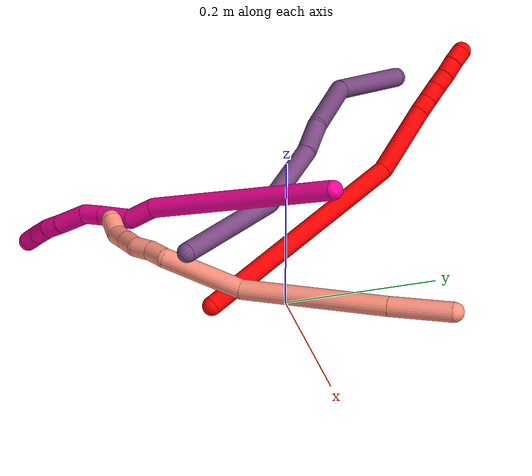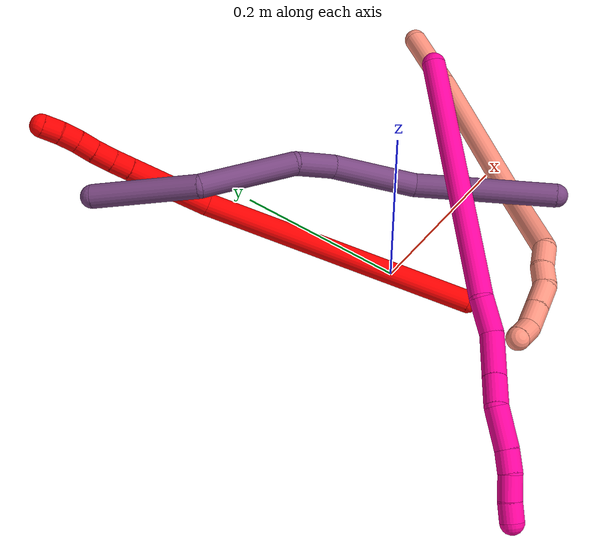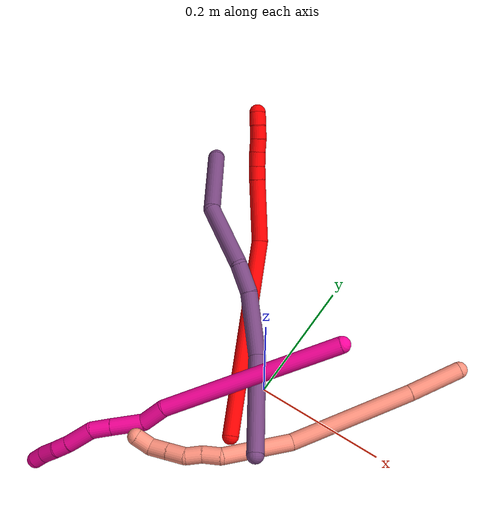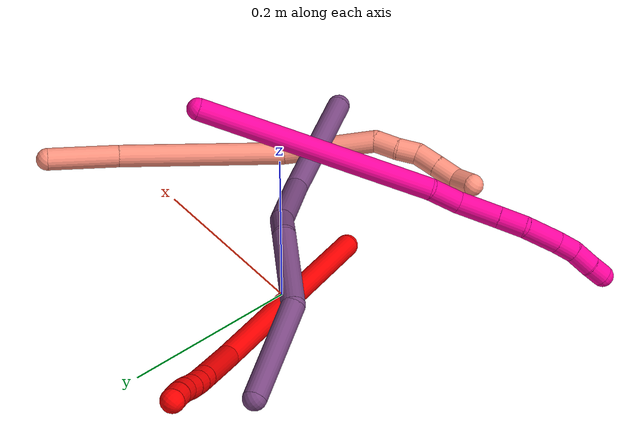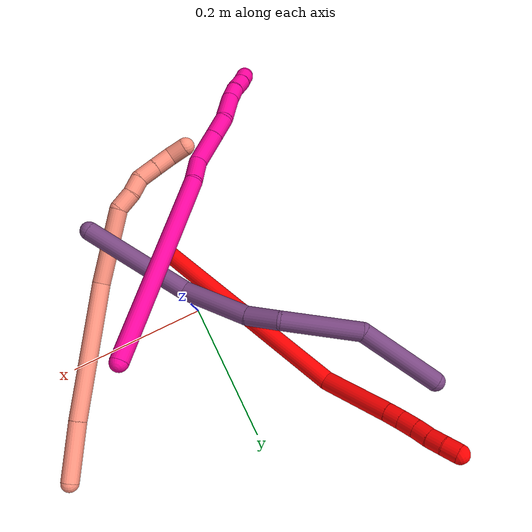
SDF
<sdf version="1.7">
 <world name="default">
  <model name="photoneo_s_sensor">
   <static>1</static>
   <pose>0 0 2 1.57079 1.57079 3.14159</pose>
   <link name="link">
    <inertial><mass>0.1</mass></inertial>
    <sensor name="sensor" type="depth">
     <update_rate>30</update_rate>
     <camera>
      <horizontal_fov>1.22</horizontal_fov>
      <image><width>1920</width><height>1200</height><format>B8G8R8</format></image>
      <clip><near>0.1</near><far>4</far></clip>
      <depth_camera><output>points</output></depth_camera>
     </camera>
     <plugin name="camera_plugin" filename="libgazebo_ros_depth_camera.so">
      <baseline>0.2</baseline>
      <alwaysOn>1</alwaysOn>
      <updateRate>0.0</updateRate>
      <cameraName>camera_ir</cameraName>
      <imageTopicName>/camera/color/image_raw</imageTopicName>
      <cameraInfoTopicName>/camera/color/camera_info</cameraInfoTopicName>
      <depthImageTopicName>/camera/depth/image_raw</depthImageTopicName>
      <depthImageCameraInfoTopicName>/camera/depth/camera_info</depthImageCameraInfoTopicName>
      <pointCloudTopicName>/camera/depth/points</pointCloudTopicName>
      <frameName>fr_optical</frameName>
      <pointCloudCutoff>0.1</pointCloudCutoff>
      <pointCloudCutoffMax>2.0</pointCloudCutoffMax>
      <distortionK1>0</distortionK1>
      <distortionK2>0</distortionK2>
      <distortionK3>0</distortionK3>
      <distortionT1>0</distortionT1>
      <distortionT2>0</distortionT2>
      <CxPrime>0</CxPrime>
      <Cx>0</Cx>
      <Cy>0</Cy>
      <focalLength>0</focalLength>
      <hackBaseline>0</hackBaseline>
     </plugin>
    </sensor>
   </link>
  </model>
  <model name="bin">
   <static>1</static>
   <link name="bottom">
    <collision name="collision-bottom">
     <pose>0 0 -0.01 0 -0 0</pose>
     <geometry><box><size>0.8 0.6 0.02</size></box></geometry>
     <surface>
      <friction><ode><mu>100</mu><mu2>100</mu2></ode></friction>
      <contact><collide_bitmask>65535</collide_bitmask></contact>
     </surface>
    </collision>
   </link>
   <link name="west_wall">
    <collision name="collision-west_wall">
     <pose>-0.41 0 0.1 0 -0 0</pose>
     <geometry><box><size>0.02 0.6 0.2</size></box></geometry>
     <surface>
      <friction><ode><mu>100</mu><mu2>100</mu2></ode></friction>
      <contact><collide_bitmask>65535</collide_bitmask></contact>
     </surface>
    </collision>
   </link>
   <link name="east_wall">
    <collision name="collision-east_wall">
     <pose>0.41 0 0.1 0 -0 0</pose>
     <geometry><box><size>0.02 0.6 0.2</size></box></geometry>
     <surface>
      <friction><ode><mu>100</mu><mu2>100</mu2></ode></friction>
      <contact><collide_bitmask>65535</collide_bitmask></contact>
     </surface>
    </collision>
   </link>
   <link name="south_wall">
    <collision name="collision-south_wall">
     <pose>0 -0.31 0.1 0 -0 0</pose>
     <geometry><box><size>0.8 0.02 0.2</size></box></geometry>
     <surface>
      <friction><ode><mu>100</mu><mu2>100</mu2></ode></friction>
      <contact><collide_bitmask>65535</collide_bitmask></contact>
     </surface>
    </collision>
   </link>
   <link name="north_wall">
    <collision name="collision-north_wall">
     <pose>0 0.31 0.1 0 -0 0</pose>
     <geometry><box><size>0.8 0.02 0.2</size></box></geometry>
     <surface>
      <friction><ode><mu>100</mu><mu2>100</mu2></ode></friction>
      <contact><collide_bitmask>65535</collide_bitmask></contact>
     </surface>
    </collision>
   </link>
  </model>
  <model name="2">
   <static>0</static>
   <link name="2">
    <collision name="collision-cylinder-e_1_1_4">
     <pose>-0.086307 0.119541 0.033738 -1.29573 -0.607259 0.46566</pose>
     <geometry><cylinder><radius>0.0125</radius><length>0.302504</length></cylinder></geometry>
     <surface>
      <friction><ode><mu>1.16</mu><mu2>1.16</mu2><slip1>0</slip1><slip2>0</slip2></ode></friction>
      <contact><ode><kp>1e+06</kp><kd>1</kd><max_vel>0</max_vel><min_depth>0.001</min_depth></ode></contact>
     </surface>
    </collision>
    <visual name="visual-cylinder-e_1_1_4">
     <pose>-0.086307 0.119541 0.033738 -1.29573 -0.607259 0.46566</pose>
     <geometry><cylinder><radius>0.0125</radius><length>0.302504</length></cylinder></geometry>
     <material><ambient>1 0 0 1</ambient></material>
    </visual>
    <collision name="collision-cylinder-e_2_4_5">
     <pose>-0.185656 0.282281 0.08166 -1.25352 -0.279313 0.202895</pose>
     <geometry><cylinder><radius>0.0125</radius><length>0.094604</length></cylinder></geometry>
     <surface>
      <friction><ode><mu>1.16</mu><mu2>1.16</mu2><slip1>0</slip1><slip2>0</slip2></ode></friction>
      <contact><ode><kp>1e+06</kp><kd>1</kd><max_vel>0</max_vel><min_depth>0.001</min_depth></ode></contact>
     </surface>
    </collision>
    <visual name="visual-cylinder-e_2_4_5">
     <pose>-0.185656 0.282281 0.08166 -1.25352 -0.279313 0.202895</pose>
     <geometry><cylinder><radius>0.0125</radius><length>0.094604</length></cylinder></geometry>
     <material><ambient>1 0 0 1</ambient></material>
    </visual>
    <collision name="collision-cylinder-e_3_5_6">
     <pose>-0.201876 0.334767 0.098753 -1.2674 -0.315774 0.232919</pose>
     <geometry><cylinder><radius>0.0125</radius><length>0.020475</length></cylinder></geometry>
     <surface>
      <friction><ode><mu>1.16</mu><mu2>1.16</mu2><slip1>0</slip1><slip2>0</slip2></ode></friction>
      <contact><ode><kp>1e+06</kp><kd>1</kd><max_vel>0</max_vel><min_depth>0.001</min_depth></ode></contact>
     </surface>
    </collision>
    <visual name="visual-cylinder-e_3_5_6">
     <pose>-0.201876 0.334767 0.098753 -1.2674 -0.315774 0.232919</pose>
     <geometry><cylinder><radius>0.0125</radius><length>0.020475</length></cylinder></geometry>
     <material><ambient>1 0 0 1</ambient></material>
    </visual>
    <collision name="collision-cylinder-e_4_6_7">
     <pose>-0.208265 0.354231 0.104376 -1.31005 -0.295864 0.227952</pose>
     <geometry><cylinder><radius>0.0125</radius><length>0.022023</length></cylinder></geometry>
     <surface>
      <friction><ode><mu>1.16</mu><mu2>1.16</mu2><slip1>0</slip1><slip2>0</slip2></ode></friction>
      <contact><ode><kp>1e+06</kp><kd>1</kd><max_vel>0</max_vel><min_depth>0.001</min_depth></ode></contact>
     </surface>
    </collision>
    <visual name="visual-cylinder-e_4_6_7">
     <pose>-0.208265 0.354231 0.104376 -1.31005 -0.295864 0.227952</pose>
     <geometry><cylinder><radius>0.0125</radius><length>0.022023</length></cylinder></geometry>
     <material><ambient>1 0 0 1</ambient></material>
    </visual>
    <collision name="collision-cylinder-e_5_7_8">
     <pose>-0.214363 0.373833 0.108883 -1.38298 -0.292318 0.242536</pose>
     <geometry><cylinder><radius>0.0125</radius><length>0.020038</length></cylinder></geometry>
     <surface>
      <friction><ode><mu>1.16</mu><mu2>1.16</mu2><slip1>0</slip1><slip2>0</slip2></ode></friction>
      <contact><ode><kp>1e+06</kp><kd>1</kd><max_vel>0</max_vel><min_depth>0.001</min_depth></ode></contact>
     </surface>
    </collision>
    <visual name="visual-cylinder-e_5_7_8">
     <pose>-0.214363 0.373833 0.108883 -1.38298 -0.292318 0.242536</pose>
     <geometry><cylinder><radius>0.0125</radius><length>0.020038</length></cylinder></geometry>
     <material><ambient>1 0 0 1</ambient></material>
    </visual>
    <collision name="collision-cylinder-e_6_8_9">
     <pose>-0.219904 0.392501 0.113513 -1.27279 -0.267842 0.198461</pose>
     <geometry><cylinder><radius>0.0125</radius><length>0.020052</length></cylinder></geometry>
     <surface>
      <friction><ode><mu>1.16</mu><mu2>1.16</mu2><slip1>0</slip1><slip2>0</slip2></ode></friction>
      <contact><ode><kp>1e+06</kp><kd>1</kd><max_vel>0</max_vel><min_depth>0.001</min_depth></ode></contact>
     </surface>
    </collision>
    <visual name="visual-cylinder-e_6_8_9">
     <pose>-0.219904 0.392501 0.113513 -1.27279 -0.267842 0.198461</pose>
     <geometry><cylinder><radius>0.0125</radius><length>0.020052</length></cylinder></geometry>
     <material><ambient>1 0 0 1</ambient></material>
    </visual>
    <collision name="collision-cylinder-e_7_9_2">
     <pose>-0.226193 0.410606 0.119711 -1.20849 -0.366297 0.254371</pose>
     <geometry><cylinder><radius>0.0125</radius><length>0.020304</length></cylinder></geometry>
     <surface>
      <friction><ode><mu>1.16</mu><mu2>1.16</mu2><slip1>0</slip1><slip2>0</slip2></ode></friction>
      <contact><ode><kp>1e+06</kp><kd>1</kd><max_vel>0</max_vel><min_depth>0.001</min_depth></ode></contact>
     </surface>
    </collision>
    <visual name="visual-cylinder-e_7_9_2">
     <pose>-0.226193 0.410606 0.119711 -1.20849 -0.366297 0.254371</pose>
     <geometry><cylinder><radius>0.0125</radius><length>0.020304</length></cylinder></geometry>
     <material><ambient>1 0 0 1</ambient></material>
    </visual>
    <collision name="collision-sphere-2">
     <pose>-0.229829 0.41947 0.123071 0 -0 0</pose>
     <geometry><sphere><radius>0.0125</radius></sphere></geometry>
     <surface>
      <friction><ode><mu>1.16</mu><mu2>1.16</mu2><slip1>0</slip1><slip2>0</slip2></ode></friction>
      <contact><ode><kp>1e+06</kp><kd>1</kd><max_vel>0</max_vel><min_depth>0.001</min_depth></ode></contact>
     </surface>
    </collision>
    <visual name="visual-sphere-2">
     <pose>-0.229829 0.41947 0.123071 0 -0 0</pose>
     <geometry><sphere><radius>0.0125</radius></sphere></geometry>
     <material><ambient>1 0 0 1</ambient></material>
    </visual>
    <collision name="collision-sphere-9">
     <pose>-0.222557 0.401743 0.116352 0 -0 0</pose>
     <geometry><sphere><radius>0.0125</radius></sphere></geometry>
     <surface>
      <friction><ode><mu>1.16</mu><mu2>1.16</mu2><slip1>0</slip1><slip2>0</slip2></ode></friction>
      <contact><ode><kp>1e+06</kp><kd>1</kd><max_vel>0</max_vel><min_depth>0.001</min_depth></ode></contact>
     </surface>
    </collision>
    <visual name="visual-sphere-9">
     <pose>-0.222557 0.401743 0.116352 0 -0 0</pose>
     <geometry><sphere><radius>0.0125</radius></sphere></geometry>
     <material><ambient>1 0 0 1</ambient></material>
    </visual>
    <collision name="collision-sphere-4">
     <pose>-0.172615 0.239082 0.067475 0 -0 0</pose>
     <geometry><sphere><radius>0.0125</radius></sphere></geometry>
     <surface>
      <friction><ode><mu>1.16</mu><mu2>1.16</mu2><slip1>0</slip1><slip2>0</slip2></ode></friction>
      <contact><ode><kp>1e+06</kp><kd>1</kd><max_vel>0</max_vel><min_depth>0.001</min_depth></ode></contact>
     </surface>
    </collision>
    <visual name="visual-sphere-4">
     <pose>-0.172615 0.239082 0.067475 0 -0 0</pose>
     <geometry><sphere><radius>0.0125</radius></sphere></geometry>
     <material><ambient>1 0 0 1</ambient></material>
    </visual>
    <collision name="collision-sphere-1">
     <geometry><sphere><radius>0.0125</radius></sphere></geometry>
     <surface>
      <friction><ode><mu>1.16</mu><mu2>1.16</mu2><slip1>0</slip1><slip2>0</slip2></ode></friction>
      <contact><ode><kp>1e+06</kp><kd>1</kd><max_vel>0</max_vel><min_depth>0.001</min_depth></ode></contact>
     </surface>
    </collision>
    <visual name="visual-sphere-1">
     <geometry><sphere><radius>0.0125</radius></sphere></geometry>
     <material><ambient>1 0 0 1</ambient></material>
    </visual>
    <collision name="collision-sphere-8">
     <pose>-0.21725 0.383258 0.110674 0 -0 0</pose>
     <geometry><sphere><radius>0.0125</radius></sphere></geometry>
     <surface>
      <friction><ode><mu>1.16</mu><mu2>1.16</mu2><slip1>0</slip1><slip2>0</slip2></ode></friction>
      <contact><ode><kp>1e+06</kp><kd>1</kd><max_vel>0</max_vel><min_depth>0.001</min_depth></ode></contact>
     </surface>
    </collision>
    <visual name="visual-sphere-8">
     <pose>-0.21725 0.383258 0.110674 0 -0 0</pose>
     <geometry><sphere><radius>0.0125</radius></sphere></geometry>
     <material><ambient>1 0 0 1</ambient></material>
    </visual>
    <collision name="collision-sphere-5">
     <pose>-0.198697 0.325481 0.095846 0 -0 0</pose>
     <geometry><sphere><radius>0.0125</radius></sphere></geometry>
     <surface>
      <friction><ode><mu>1.16</mu><mu2>1.16</mu2><slip1>0</slip1><slip2>0</slip2></ode></friction>
      <contact><ode><kp>1e+06</kp><kd>1</kd><max_vel>0</max_vel><min_depth>0.001</min_depth></ode></contact>
     </surface>
    </collision>
    <visual name="visual-sphere-5">
     <pose>-0.198697 0.325481 0.095846 0 -0 0</pose>
     <geometry><sphere><radius>0.0125</radius></sphere></geometry>
     <material><ambient>1 0 0 1</ambient></material>
    </visual>
    <collision name="collision-sphere-6">
     <pose>-0.205055 0.344054 0.10166 0 -0 0</pose>
     <geometry><sphere><radius>0.0125</radius></sphere></geometry>
     <surface>
      <friction><ode><mu>1.16</mu><mu2>1.16</mu2><slip1>0</slip1><slip2>0</slip2></ode></friction>
      <contact><ode><kp>1e+06</kp><kd>1</kd><max_vel>0</max_vel><min_depth>0.001</min_depth></ode></contact>
     </surface>
    </collision>
    <visual name="visual-sphere-6">
     <pose>-0.205055 0.344054 0.10166 0 -0 0</pose>
     <geometry><sphere><radius>0.0125</radius></sphere></geometry>
     <material><ambient>1 0 0 1</ambient></material>
    </visual>
    <collision name="collision-sphere-7">
     <pose>-0.211476 0.364408 0.107091 0 -0 0</pose>
     <geometry><sphere><radius>0.0125</radius></sphere></geometry>
     <surface>
      <friction><ode><mu>1.16</mu><mu2>1.16</mu2><slip1>0</slip1><slip2>0</slip2></ode></friction>
      <contact><ode><kp>1e+06</kp><kd>1</kd><max_vel>0</max_vel><min_depth>0.001</min_depth></ode></contact>
     </surface>
    </collision>
    <visual name="visual-sphere-7">
     <pose>-0.211476 0.364408 0.107091 0 -0 0</pose>
     <geometry><sphere><radius>0.0125</radius></sphere></geometry>
     <material><ambient>1 0 0 1</ambient></material>
    </visual>
    <inertial>
     <pose>-0.131379 0.202441 0.058281 0 -0 0</pose>
     <mass>0.5</mass>
     <inertia>
      <ixx>0.002631</ixx>
      <ixy>0</ixy>
      <ixz>0</ixz>
      <iyy>0.002067</iyy>
      <iyz>0</iyz>
      <izz>-0.000552</izz>
     </inertia>
    </inertial>
   </link>
   <pose>0.004056 -0.097236 0.013227 1.77727 -0.570493 -1.5482</pose>
  </model>
  <model name="16">
   <static>0</static>
   <link name="16">
    <collision name="collision-cylinder-e_1_1_4">
     <pose>-0.033851 0.005622 -0.020435 -2.87313 -1.0114 2.66317</pose>
     <geometry><cylinder><radius>0.0125</radius><length>0.079878</length></cylinder></geometry>
     <surface>
      <friction><ode><mu>1.16</mu><mu2>1.16</mu2><slip1>0</slip1><slip2>0</slip2></ode></friction>
      <contact><ode><kp>1e+06</kp><kd>1</kd><max_vel>0</max_vel><min_depth>0.001</min_depth></ode></contact>
     </surface>
    </collision>
    <visual name="visual-cylinder-e_1_1_4">
     <pose>-0.033851 0.005622 -0.020435 -2.87313 -1.0114 2.66317</pose>
     <geometry><cylinder><radius>0.0125</radius><length>0.079878</length></cylinder></geometry>
     <material><ambient>1 0.576471 0.494118 1</ambient></material>
    </visual>
    <collision name="collision-cylinder-e_2_4_5">
     <pose>-0.147252 0.020249 -0.088321 -2.95404 -1.02515 2.81039</pose>
     <geometry><cylinder><radius>0.0125</radius><length>0.186126</length></cylinder></geometry>
     <surface>
      <friction><ode><mu>1.16</mu><mu2>1.16</mu2><slip1>0</slip1><slip2>0</slip2></ode></friction>
      <contact><ode><kp>1e+06</kp><kd>1</kd><max_vel>0</max_vel><min_depth>0.001</min_depth></ode></contact>
     </surface>
    </collision>
    <visual name="visual-cylinder-e_2_4_5">
     <pose>-0.147252 0.020249 -0.088321 -2.95404 -1.02515 2.81039</pose>
     <geometry><cylinder><radius>0.0125</radius><length>0.186126</length></cylinder></geometry>
     <material><ambient>1 0.576471 0.494118 1</ambient></material>
    </visual>
    <collision name="collision-cylinder-e_3_5_6">
     <pose>-0.264438 0.026804 -0.171875 3.07382 -0.805026 -2.98269</pose>
     <geometry><cylinder><radius>0.0125</radius><length>0.104422</length></cylinder></geometry>
     <surface>
      <friction><ode><mu>1.16</mu><mu2>1.16</mu2><slip1>0</slip1><slip2>0</slip2></ode></friction>
      <contact><ode><kp>1e+06</kp><kd>1</kd><max_vel>0</max_vel><min_depth>0.001</min_depth></ode></contact>
     </surface>
    </collision>
    <visual name="visual-cylinder-e_3_5_6">
     <pose>-0.264438 0.026804 -0.171875 3.07382 -0.805026 -2.98269</pose>
     <geometry><cylinder><radius>0.0125</radius><length>0.104422</length></cylinder></geometry>
     <material><ambient>1 0.576471 0.494118 1</ambient></material>
    </visual>
    <collision name="collision-cylinder-e_4_6_7">
     <pose>-0.31317 0.018782 -0.213238 2.32734 -0.966511 -1.76587</pose>
     <geometry><cylinder><radius>0.0125</radius><length>0.026968</length></cylinder></geometry>
     <surface>
      <friction><ode><mu>1.16</mu><mu2>1.16</mu2><slip1>0</slip1><slip2>0</slip2></ode></friction>
      <contact><ode><kp>1e+06</kp><kd>1</kd><max_vel>0</max_vel><min_depth>0.001</min_depth></ode></contact>
     </surface>
    </collision>
    <visual name="visual-cylinder-e_4_6_7">
     <pose>-0.31317 0.018782 -0.213238 2.32734 -0.966511 -1.76587</pose>
     <geometry><cylinder><radius>0.0125</radius><length>0.026968</length></cylinder></geometry>
     <material><ambient>1 0.576471 0.494118 1</ambient></material>
    </visual>
    <collision name="collision-cylinder-e_5_7_8">
     <pose>-0.334739 0.010836 -0.223276 2.68042 -1.09952 -2.40986</pose>
     <geometry><cylinder><radius>0.0125</radius><length>0.023507</length></cylinder></geometry>
     <surface>
      <friction><ode><mu>1.16</mu><mu2>1.16</mu2><slip1>0</slip1><slip2>0</slip2></ode></friction>
      <contact><ode><kp>1e+06</kp><kd>1</kd><max_vel>0</max_vel><min_depth>0.001</min_depth></ode></contact>
     </surface>
    </collision>
    <visual name="visual-cylinder-e_5_7_8">
     <pose>-0.334739 0.010836 -0.223276 2.68042 -1.09952 -2.40986</pose>
     <geometry><cylinder><radius>0.0125</radius><length>0.023507</length></cylinder></geometry>
     <material><ambient>1 0.576471 0.494118 1</ambient></material>
    </visual>
    <collision name="collision-cylinder-e_6_8_9">
     <pose>-0.356016 0.000831 -0.230921 1.93015 -0.924548 -1.24735</pose>
     <geometry><cylinder><radius>0.0125</radius><length>0.027068</length></cylinder></geometry>
     <surface>
      <friction><ode><mu>1.16</mu><mu2>1.16</mu2><slip1>0</slip1><slip2>0</slip2></ode></friction>
      <contact><ode><kp>1e+06</kp><kd>1</kd><max_vel>0</max_vel><min_depth>0.001</min_depth></ode></contact>
     </surface>
    </collision>
    <visual name="visual-cylinder-e_6_8_9">
     <pose>-0.356016 0.000831 -0.230921 1.93015 -0.924548 -1.24735</pose>
     <geometry><cylinder><radius>0.0125</radius><length>0.027068</length></cylinder></geometry>
     <material><ambient>1 0.576471 0.494118 1</ambient></material>
    </visual>
    <collision name="collision-cylinder-e_7_9_10">
     <pose>-0.377587 -0.014441 -0.23653 1.91542 -0.924593 -1.23256</pose>
     <geometry><cylinder><radius>0.0125</radius><length>0.026971</length></cylinder></geometry>
     <surface>
      <friction><ode><mu>1.16</mu><mu2>1.16</mu2><slip1>0</slip1><slip2>0</slip2></ode></friction>
      <contact><ode><kp>1e+06</kp><kd>1</kd><max_vel>0</max_vel><min_depth>0.001</min_depth></ode></contact>
     </surface>
    </collision>
    <visual name="visual-cylinder-e_7_9_10">
     <pose>-0.377587 -0.014441 -0.23653 1.91542 -0.924593 -1.23256</pose>
     <geometry><cylinder><radius>0.0125</radius><length>0.026971</length></cylinder></geometry>
     <material><ambient>1 0.576471 0.494118 1</ambient></material>
    </visual>
    <collision name="collision-cylinder-e_8_10_2">
     <pose>-0.393803 -0.031392 -0.24565 2.17141 -0.449896 -0.819129</pose>
     <geometry><cylinder><radius>0.0125</radius><length>0.02506</length></cylinder></geometry>
     <surface>
      <friction><ode><mu>1.16</mu><mu2>1.16</mu2><slip1>0</slip1><slip2>0</slip2></ode></friction>
      <contact><ode><kp>1e+06</kp><kd>1</kd><max_vel>0</max_vel><min_depth>0.001</min_depth></ode></contact>
     </surface>
    </collision>
    <visual name="visual-cylinder-e_8_10_2">
     <pose>-0.393803 -0.031392 -0.24565 2.17141 -0.449896 -0.819129</pose>
     <geometry><cylinder><radius>0.0125</radius><length>0.02506</length></cylinder></geometry>
     <material><ambient>1 0.576471 0.494118 1</ambient></material>
    </visual>
    <collision name="collision-sphere-2">
     <pose>-0.399251 -0.040701 -0.252027 0 -0 0</pose>
     <geometry><sphere><radius>0.0125</radius></sphere></geometry>
     <surface>
      <friction><ode><mu>1.16</mu><mu2>1.16</mu2><slip1>0</slip1><slip2>0</slip2></ode></friction>
      <contact><ode><kp>1e+06</kp><kd>1</kd><max_vel>0</max_vel><min_depth>0.001</min_depth></ode></contact>
     </surface>
    </collision>
    <visual name="visual-sphere-2">
     <pose>-0.399251 -0.040701 -0.252027 0 -0 0</pose>
     <geometry><sphere><radius>0.0125</radius></sphere></geometry>
     <material><ambient>1 0.576471 0.494118 1</ambient></material>
    </visual>
    <collision name="collision-sphere-10">
     <pose>-0.388354 -0.022084 -0.239274 0 -0 0</pose>
     <geometry><sphere><radius>0.0125</radius></sphere></geometry>
     <surface>
      <friction><ode><mu>1.16</mu><mu2>1.16</mu2><slip1>0</slip1><slip2>0</slip2></ode></friction>
      <contact><ode><kp>1e+06</kp><kd>1</kd><max_vel>0</max_vel><min_depth>0.001</min_depth></ode></contact>
     </surface>
    </collision>
    <visual name="visual-sphere-10">
     <pose>-0.388354 -0.022084 -0.239274 0 -0 0</pose>
     <geometry><sphere><radius>0.0125</radius></sphere></geometry>
     <material><ambient>1 0.576471 0.494118 1</ambient></material>
    </visual>
    <collision name="collision-sphere-9">
     <pose>-0.366821 -0.006798 -0.233787 0 -0 0</pose>
     <geometry><sphere><radius>0.0125</radius></sphere></geometry>
     <surface>
      <friction><ode><mu>1.16</mu><mu2>1.16</mu2><slip1>0</slip1><slip2>0</slip2></ode></friction>
      <contact><ode><kp>1e+06</kp><kd>1</kd><max_vel>0</max_vel><min_depth>0.001</min_depth></ode></contact>
     </surface>
    </collision>
    <visual name="visual-sphere-9">
     <pose>-0.366821 -0.006798 -0.233787 0 -0 0</pose>
     <geometry><sphere><radius>0.0125</radius></sphere></geometry>
     <material><ambient>1 0.576471 0.494118 1</ambient></material>
    </visual>
    <collision name="collision-sphere-4">
     <pose>-0.067703 0.011244 -0.040871 0 -0 0</pose>
     <geometry><sphere><radius>0.0125</radius></sphere></geometry>
     <surface>
      <friction><ode><mu>1.16</mu><mu2>1.16</mu2><slip1>0</slip1><slip2>0</slip2></ode></friction>
      <contact><ode><kp>1e+06</kp><kd>1</kd><max_vel>0</max_vel><min_depth>0.001</min_depth></ode></contact>
     </surface>
    </collision>
    <visual name="visual-sphere-4">
     <pose>-0.067703 0.011244 -0.040871 0 -0 0</pose>
     <geometry><sphere><radius>0.0125</radius></sphere></geometry>
     <material><ambient>1 0.576471 0.494118 1</ambient></material>
    </visual>
    <collision name="collision-sphere-1">
     <geometry><sphere><radius>0.0125</radius></sphere></geometry>
     <surface>
      <friction><ode><mu>1.16</mu><mu2>1.16</mu2><slip1>0</slip1><slip2>0</slip2></ode></friction>
      <contact><ode><kp>1e+06</kp><kd>1</kd><max_vel>0</max_vel><min_depth>0.001</min_depth></ode></contact>
     </surface>
    </collision>
    <visual name="visual-sphere-1">
     <geometry><sphere><radius>0.0125</radius></sphere></geometry>
     <material><ambient>1 0.576471 0.494118 1</ambient></material>
    </visual>
    <collision name="collision-sphere-8">
     <pose>-0.345211 0.008461 -0.228055 0 -0 0</pose>
     <geometry><sphere><radius>0.0125</radius></sphere></geometry>
     <surface>
      <friction><ode><mu>1.16</mu><mu2>1.16</mu2><slip1>0</slip1><slip2>0</slip2></ode></friction>
      <contact><ode><kp>1e+06</kp><kd>1</kd><max_vel>0</max_vel><min_depth>0.001</min_depth></ode></contact>
     </surface>
    </collision>
    <visual name="visual-sphere-8">
     <pose>-0.345211 0.008461 -0.228055 0 -0 0</pose>
     <geometry><sphere><radius>0.0125</radius></sphere></geometry>
     <material><ambient>1 0.576471 0.494118 1</ambient></material>
    </visual>
    <collision name="collision-sphere-5">
     <pose>-0.226802 0.029254 -0.135771 0 -0 0</pose>
     <geometry><sphere><radius>0.0125</radius></sphere></geometry>
     <surface>
      <friction><ode><mu>1.16</mu><mu2>1.16</mu2><slip1>0</slip1><slip2>0</slip2></ode></friction>
      <contact><ode><kp>1e+06</kp><kd>1</kd><max_vel>0</max_vel><min_depth>0.001</min_depth></ode></contact>
     </surface>
    </collision>
    <visual name="visual-sphere-5">
     <pose>-0.226802 0.029254 -0.135771 0 -0 0</pose>
     <geometry><sphere><radius>0.0125</radius></sphere></geometry>
     <material><ambient>1 0.576471 0.494118 1</ambient></material>
    </visual>
    <collision name="collision-sphere-6">
     <pose>-0.302074 0.024353 -0.207979 0 -0 0</pose>
     <geometry><sphere><radius>0.0125</radius></sphere></geometry>
     <surface>
      <friction><ode><mu>1.16</mu><mu2>1.16</mu2><slip1>0</slip1><slip2>0</slip2></ode></friction>
      <contact><ode><kp>1e+06</kp><kd>1</kd><max_vel>0</max_vel><min_depth>0.001</min_depth></ode></contact>
     </surface>
    </collision>
    <visual name="visual-sphere-6">
     <pose>-0.302074 0.024353 -0.207979 0 -0 0</pose>
     <geometry><sphere><radius>0.0125</radius></sphere></geometry>
     <material><ambient>1 0.576471 0.494118 1</ambient></material>
    </visual>
    <collision name="collision-sphere-7">
     <pose>-0.324266 0.01321 -0.218497 0 -0 0</pose>
     <geometry><sphere><radius>0.0125</radius></sphere></geometry>
     <surface>
      <friction><ode><mu>1.16</mu><mu2>1.16</mu2><slip1>0</slip1><slip2>0</slip2></ode></friction>
      <contact><ode><kp>1e+06</kp><kd>1</kd><max_vel>0</max_vel><min_depth>0.001</min_depth></ode></contact>
     </surface>
    </collision>
    <visual name="visual-sphere-7">
     <pose>-0.324266 0.01321 -0.218497 0 -0 0</pose>
     <geometry><sphere><radius>0.0125</radius></sphere></geometry>
     <material><ambient>1 0.576471 0.494118 1</ambient></material>
    </visual>
    <inertial>
     <pose>-0.207456 0.013249 -0.131608 0 -0 0</pose>
     <mass>0.5</mass>
     <inertia>
      <ixx>-0.000301</ixx>
      <ixy>0</ixy>
      <ixz>0</ixz>
      <iyy>0.000765</iyy>
      <iyz>0</iyz>
      <izz>0.000517</izz>
     </inertia>
    </inertial>
   </link>
   <pose>0.245317 0.137288 0.110218 -2.93507 -0.577325 0.780534</pose>
  </model>
  <model name="18">
   <static>0</static>
   <link name="18">
    <collision name="collision-cylinder-e_1_1_4">
     <pose>-0.039085 -0.047181 -0.120423 2.76818 -0.293471 -1.32781</pose>
     <geometry><cylinder><radius>0.0125</radius><length>0.270226</length></cylinder></geometry>
     <surface>
      <friction><ode><mu>1.16</mu><mu2>1.16</mu2><slip1>0</slip1><slip2>0</slip2></ode></friction>
      <contact><ode><kp>1e+06</kp><kd>1</kd><max_vel>0</max_vel><min_depth>0.001</min_depth></ode></contact>
     </surface>
    </collision>
    <visual name="visual-cylinder-e_1_1_4">
     <pose>-0.039085 -0.047181 -0.120423 2.76818 -0.293471 -1.32781</pose>
     <geometry><cylinder><radius>0.0125</radius><length>0.270226</length></cylinder></geometry>
     <material><ambient>1 0.007843 0.615686 1</ambient></material>
    </visual>
    <collision name="collision-cylinder-e_2_4_5">
     <pose>-0.078502 -0.099185 -0.259292 2.88589 -0.017396 -0.135122</pose>
     <geometry><cylinder><radius>0.0125</radius><length>0.038136</length></cylinder></geometry>
     <surface>
      <friction><ode><mu>1.16</mu><mu2>1.16</mu2><slip1>0</slip1><slip2>0</slip2></ode></friction>
      <contact><ode><kp>1e+06</kp><kd>1</kd><max_vel>0</max_vel><min_depth>0.001</min_depth></ode></contact>
     </surface>
    </collision>
    <visual name="visual-cylinder-e_2_4_5">
     <pose>-0.078502 -0.099185 -0.259292 2.88589 -0.017396 -0.135122</pose>
     <geometry><cylinder><radius>0.0125</radius><length>0.038136</length></cylinder></geometry>
     <material><ambient>1 0.007843 0.615686 1</ambient></material>
    </visual>
    <collision name="collision-cylinder-e_3_5_6">
     <pose>-0.090006 -0.111639 -0.29765 2.77558 -0.482576 -1.8519</pose>
     <geometry><cylinder><radius>0.0125</radius><length>0.04815</length></cylinder></geometry>
     <surface>
      <friction><ode><mu>1.16</mu><mu2>1.16</mu2><slip1>0</slip1><slip2>0</slip2></ode></friction>
      <contact><ode><kp>1e+06</kp><kd>1</kd><max_vel>0</max_vel><min_depth>0.001</min_depth></ode></contact>
     </surface>
    </collision>
    <visual name="visual-cylinder-e_3_5_6">
     <pose>-0.090006 -0.111639 -0.29765 2.77558 -0.482576 -1.8519</pose>
     <geometry><cylinder><radius>0.0125</radius><length>0.04815</length></cylinder></geometry>
     <material><ambient>1 0.007843 0.615686 1</ambient></material>
    </visual>
    <collision name="collision-cylinder-e_4_6_7">
     <pose>-0.108039 -0.124016 -0.330347 2.78622 -0.46622 -1.84647</pose>
     <geometry><cylinder><radius>0.0125</radius><length>0.030529</length></cylinder></geometry>
     <surface>
      <friction><ode><mu>1.16</mu><mu2>1.16</mu2><slip1>0</slip1><slip2>0</slip2></ode></friction>
      <contact><ode><kp>1e+06</kp><kd>1</kd><max_vel>0</max_vel><min_depth>0.001</min_depth></ode></contact>
     </surface>
    </collision>
    <visual name="visual-cylinder-e_4_6_7">
     <pose>-0.108039 -0.124016 -0.330347 2.78622 -0.46622 -1.84647</pose>
     <geometry><cylinder><radius>0.0125</radius><length>0.030529</length></cylinder></geometry>
     <material><ambient>1 0.007843 0.615686 1</ambient></material>
    </visual>
    <collision name="collision-cylinder-e_5_7_8">
     <pose>-0.116914 -0.134303 -0.36389 2.88071 -0.093419 -0.684583</pose>
     <geometry><cylinder><radius>0.0125</radius><length>0.043163</length></cylinder></geometry>
     <surface>
      <friction><ode><mu>1.16</mu><mu2>1.16</mu2><slip1>0</slip1><slip2>0</slip2></ode></friction>
      <contact><ode><kp>1e+06</kp><kd>1</kd><max_vel>0</max_vel><min_depth>0.001</min_depth></ode></contact>
     </surface>
    </collision>
    <visual name="visual-cylinder-e_5_7_8">
     <pose>-0.116914 -0.134303 -0.36389 2.88071 -0.093419 -0.684583</pose>
     <geometry><cylinder><radius>0.0125</radius><length>0.043163</length></cylinder></geometry>
     <material><ambient>1 0.007843 0.615686 1</ambient></material>
    </visual>
    <collision name="collision-cylinder-e_6_8_9">
     <pose>-0.121081 -0.142142 -0.395954 2.94111 -0.184576 -1.48772</pose>
     <geometry><cylinder><radius>0.0125</radius><length>0.023466</length></cylinder></geometry>
     <surface>
      <friction><ode><mu>1.16</mu><mu2>1.16</mu2><slip1>0</slip1><slip2>0</slip2></ode></friction>
      <contact><ode><kp>1e+06</kp><kd>1</kd><max_vel>0</max_vel><min_depth>0.001</min_depth></ode></contact>
     </surface>
    </collision>
    <visual name="visual-cylinder-e_6_8_9">
     <pose>-0.121081 -0.142142 -0.395954 2.94111 -0.184576 -1.48772</pose>
     <geometry><cylinder><radius>0.0125</radius><length>0.023466</length></cylinder></geometry>
     <material><ambient>1 0.007843 0.615686 1</ambient></material>
    </visual>
    <collision name="collision-cylinder-e_7_9_10">
     <pose>-0.125482 -0.144402 -0.420036 -3.13875 -0.1741 3.10896</pose>
     <geometry><cylinder><radius>0.0125</radius><length>0.025951</length></cylinder></geometry>
     <surface>
      <friction><ode><mu>1.16</mu><mu2>1.16</mu2><slip1>0</slip1><slip2>0</slip2></ode></friction>
      <contact><ode><kp>1e+06</kp><kd>1</kd><max_vel>0</max_vel><min_depth>0.001</min_depth></ode></contact>
     </surface>
    </collision>
    <visual name="visual-cylinder-e_7_9_10">
     <pose>-0.125482 -0.144402 -0.420036 -3.13875 -0.1741 3.10896</pose>
     <geometry><cylinder><radius>0.0125</radius><length>0.025951</length></cylinder></geometry>
     <material><ambient>1 0.007843 0.615686 1</ambient></material>
    </visual>
    <collision name="collision-cylinder-e_8_10_2">
     <pose>-0.128338 -0.144968 -0.442969 3.08237 -0.05974 -1.57958</pose>
     <geometry><cylinder><radius>0.0125</radius><length>0.020379</length></cylinder></geometry>
     <surface>
      <friction><ode><mu>1.16</mu><mu2>1.16</mu2><slip1>0</slip1><slip2>0</slip2></ode></friction>
      <contact><ode><kp>1e+06</kp><kd>1</kd><max_vel>0</max_vel><min_depth>0.001</min_depth></ode></contact>
     </surface>
    </collision>
    <visual name="visual-cylinder-e_8_10_2">
     <pose>-0.128338 -0.144968 -0.442969 3.08237 -0.05974 -1.57958</pose>
     <geometry><cylinder><radius>0.0125</radius><length>0.020379</length></cylinder></geometry>
     <material><ambient>1 0.007843 0.615686 1</ambient></material>
    </visual>
    <collision name="collision-sphere-2">
     <pose>-0.128946 -0.14557 -0.453122 0 -0 0</pose>
     <geometry><sphere><radius>0.0125</radius></sphere></geometry>
     <surface>
      <friction><ode><mu>1.16</mu><mu2>1.16</mu2><slip1>0</slip1><slip2>0</slip2></ode></friction>
      <contact><ode><kp>1e+06</kp><kd>1</kd><max_vel>0</max_vel><min_depth>0.001</min_depth></ode></contact>
     </surface>
    </collision>
    <visual name="visual-sphere-2">
     <pose>-0.128946 -0.14557 -0.453122 0 -0 0</pose>
     <geometry><sphere><radius>0.0125</radius></sphere></geometry>
     <material><ambient>1 0.007843 0.615686 1</ambient></material>
    </visual>
    <collision name="collision-sphere-10">
     <pose>-0.127729 -0.144366 -0.432815 0 -0 0</pose>
     <geometry><sphere><radius>0.0125</radius></sphere></geometry>
     <surface>
      <friction><ode><mu>1.16</mu><mu2>1.16</mu2><slip1>0</slip1><slip2>0</slip2></ode></friction>
      <contact><ode><kp>1e+06</kp><kd>1</kd><max_vel>0</max_vel><min_depth>0.001</min_depth></ode></contact>
     </surface>
    </collision>
    <visual name="visual-sphere-10">
     <pose>-0.127729 -0.144366 -0.432815 0 -0 0</pose>
     <geometry><sphere><radius>0.0125</radius></sphere></geometry>
     <material><ambient>1 0.007843 0.615686 1</ambient></material>
    </visual>
    <collision name="collision-sphere-9">
     <pose>-0.123234 -0.144438 -0.407256 0 -0 0</pose>
     <geometry><sphere><radius>0.0125</radius></sphere></geometry>
     <surface>
      <friction><ode><mu>1.16</mu><mu2>1.16</mu2><slip1>0</slip1><slip2>0</slip2></ode></friction>
      <contact><ode><kp>1e+06</kp><kd>1</kd><max_vel>0</max_vel><min_depth>0.001</min_depth></ode></contact>
     </surface>
    </collision>
    <visual name="visual-sphere-9">
     <pose>-0.123234 -0.144438 -0.407256 0 -0 0</pose>
     <geometry><sphere><radius>0.0125</radius></sphere></geometry>
     <material><ambient>1 0.007843 0.615686 1</ambient></material>
    </visual>
    <collision name="collision-sphere-4">
     <pose>-0.07817 -0.094363 -0.240847 0 -0 0</pose>
     <geometry><sphere><radius>0.0125</radius></sphere></geometry>
     <surface>
      <friction><ode><mu>1.16</mu><mu2>1.16</mu2><slip1>0</slip1><slip2>0</slip2></ode></friction>
      <contact><ode><kp>1e+06</kp><kd>1</kd><max_vel>0</max_vel><min_depth>0.001</min_depth></ode></contact>
     </surface>
    </collision>
    <visual name="visual-sphere-4">
     <pose>-0.07817 -0.094363 -0.240847 0 -0 0</pose>
     <geometry><sphere><radius>0.0125</radius></sphere></geometry>
     <material><ambient>1 0.007843 0.615686 1</ambient></material>
    </visual>
    <collision name="collision-sphere-1">
     <geometry><sphere><radius>0.0125</radius></sphere></geometry>
     <surface>
      <friction><ode><mu>1.16</mu><mu2>1.16</mu2><slip1>0</slip1><slip2>0</slip2></ode></friction>
      <contact><ode><kp>1e+06</kp><kd>1</kd><max_vel>0</max_vel><min_depth>0.001</min_depth></ode></contact>
     </surface>
    </collision>
    <visual name="visual-sphere-1">
     <geometry><sphere><radius>0.0125</radius></sphere></geometry>
     <material><ambient>1 0.007843 0.615686 1</ambient></material>
    </visual>
    <collision name="collision-sphere-8">
     <pose>-0.118927 -0.139845 -0.384651 0 -0 0</pose>
     <geometry><sphere><radius>0.0125</radius></sphere></geometry>
     <surface>
      <friction><ode><mu>1.16</mu><mu2>1.16</mu2><slip1>0</slip1><slip2>0</slip2></ode></friction>
      <contact><ode><kp>1e+06</kp><kd>1</kd><max_vel>0</max_vel><min_depth>0.001</min_depth></ode></contact>
     </surface>
    </collision>
    <visual name="visual-sphere-8">
     <pose>-0.118927 -0.139845 -0.384651 0 -0 0</pose>
     <geometry><sphere><radius>0.0125</radius></sphere></geometry>
     <material><ambient>1 0.007843 0.615686 1</ambient></material>
    </visual>
    <collision name="collision-sphere-5">
     <pose>-0.078833 -0.104007 -0.277737 0 -0 0</pose>
     <geometry><sphere><radius>0.0125</radius></sphere></geometry>
     <surface>
      <friction><ode><mu>1.16</mu><mu2>1.16</mu2><slip1>0</slip1><slip2>0</slip2></ode></friction>
      <contact><ode><kp>1e+06</kp><kd>1</kd><max_vel>0</max_vel><min_depth>0.001</min_depth></ode></contact>
     </surface>
    </collision>
    <visual name="visual-sphere-5">
     <pose>-0.078833 -0.104007 -0.277737 0 -0 0</pose>
     <geometry><sphere><radius>0.0125</radius></sphere></geometry>
     <material><ambient>1 0.007843 0.615686 1</ambient></material>
    </visual>
    <collision name="collision-sphere-6">
     <pose>-0.101178 -0.119272 -0.317563 0 -0 0</pose>
     <geometry><sphere><radius>0.0125</radius></sphere></geometry>
     <surface>
      <friction><ode><mu>1.16</mu><mu2>1.16</mu2><slip1>0</slip1><slip2>0</slip2></ode></friction>
      <contact><ode><kp>1e+06</kp><kd>1</kd><max_vel>0</max_vel><min_depth>0.001</min_depth></ode></contact>
     </surface>
    </collision>
    <visual name="visual-sphere-6">
     <pose>-0.101178 -0.119272 -0.317563 0 -0 0</pose>
     <geometry><sphere><radius>0.0125</radius></sphere></geometry>
     <material><ambient>1 0.007843 0.615686 1</ambient></material>
    </visual>
    <collision name="collision-sphere-7">
     <pose>-0.114901 -0.12876 -0.34313 0 -0 0</pose>
     <geometry><sphere><radius>0.0125</radius></sphere></geometry>
     <surface>
      <friction><ode><mu>1.16</mu><mu2>1.16</mu2><slip1>0</slip1><slip2>0</slip2></ode></friction>
      <contact><ode><kp>1e+06</kp><kd>1</kd><max_vel>0</max_vel><min_depth>0.001</min_depth></ode></contact>
     </surface>
    </collision>
    <visual name="visual-sphere-7">
     <pose>-0.114901 -0.12876 -0.34313 0 -0 0</pose>
     <geometry><sphere><radius>0.0125</radius></sphere></geometry>
     <material><ambient>1 0.007843 0.615686 1</ambient></material>
    </visual>
    <inertial>
     <pose>-0.069894 -0.083055 -0.223545 0 -0 0</pose>
     <mass>0.5</mass>
     <inertia>
      <ixx>-0.001182</ixx>
      <ixy>0</ixy>
      <ixz>0</ixz>
      <iyy>-0.001776</iyy>
      <iyz>0</iyz>
      <izz>0.001039</izz>
     </inertia>
    </inertial>
   </link>
   <pose>0.106578 0.027122 0.217387 -0.602702 0.45751 -0.220649</pose>
  </model>
  <model name="20">
   <static>0</static>
   <link name="20">
    <collision name="collision-cylinder-e_1_1_4">
     <pose>-0.043013 0.056358 -0.022518 -1.95092 -0.616565 0.87896</pose>
     <geometry><cylinder><radius>0.0125</radius><length>0.148774</length></cylinder></geometry>
     <surface>
      <friction><ode><mu>1.16</mu><mu2>1.16</mu2><slip1>0</slip1><slip2>0</slip2></ode></friction>
      <contact><ode><kp>1e+06</kp><kd>1</kd><max_vel>0</max_vel><min_depth>0.001</min_depth></ode></contact>
     </surface>
    </collision>
    <visual name="visual-cylinder-e_1_1_4">
     <pose>-0.043013 0.056358 -0.022518 -1.95092 -0.616565 0.87896</pose>
     <geometry><cylinder><radius>0.0125</radius><length>0.148774</length></cylinder></geometry>
     <material><ambient>0.478431 0.278431 0.509804 1</ambient></material>
    </visual>
    <collision name="collision-cylinder-e_2_4_5">
     <pose>-0.10765 0.153597 -0.044058 -1.54688 -0.486418 0.475355</pose>
     <geometry><cylinder><radius>0.0125</radius><length>0.092517</length></cylinder></geometry>
     <surface>
      <friction><ode><mu>1.16</mu><mu2>1.16</mu2><slip1>0</slip1><slip2>0</slip2></ode></friction>
      <contact><ode><kp>1e+06</kp><kd>1</kd><max_vel>0</max_vel><min_depth>0.001</min_depth></ode></contact>
     </surface>
    </collision>
    <visual name="visual-cylinder-e_2_4_5">
     <pose>-0.10765 0.153597 -0.044058 -1.54688 -0.486418 0.475355</pose>
     <geometry><cylinder><radius>0.0125</radius><length>0.092517</length></cylinder></geometry>
     <material><ambient>0.478431 0.278431 0.509804 1</ambient></material>
    </visual>
    <collision name="collision-cylinder-e_3_5_6">
     <pose>-0.141396 0.211978 -0.038539 -1.31686 -0.59064 0.462266</pose>
     <geometry><cylinder><radius>0.0125</radius><length>0.043533</length></cylinder></geometry>
     <surface>
      <friction><ode><mu>1.16</mu><mu2>1.16</mu2><slip1>0</slip1><slip2>0</slip2></ode></friction>
      <contact><ode><kp>1e+06</kp><kd>1</kd><max_vel>0</max_vel><min_depth>0.001</min_depth></ode></contact>
     </surface>
    </collision>
    <visual name="visual-cylinder-e_3_5_6">
     <pose>-0.141396 0.211978 -0.038539 -1.31686 -0.59064 0.462266</pose>
     <geometry><cylinder><radius>0.0125</radius><length>0.043533</length></cylinder></geometry>
     <material><ambient>0.478431 0.278431 0.509804 1</ambient></material>
    </visual>
    <collision name="collision-cylinder-e_4_6_7">
     <pose>-0.194186 0.26003 -0.033292 -1.54773 -0.926347 0.908036</pose>
     <geometry><cylinder><radius>0.0125</radius><length>0.101743</length></cylinder></geometry>
     <surface>
      <friction><ode><mu>1.16</mu><mu2>1.16</mu2><slip1>0</slip1><slip2>0</slip2></ode></friction>
      <contact><ode><kp>1e+06</kp><kd>1</kd><max_vel>0</max_vel><min_depth>0.001</min_depth></ode></contact>
     </surface>
    </collision>
    <visual name="visual-cylinder-e_4_6_7">
     <pose>-0.194186 0.26003 -0.033292 -1.54773 -0.926347 0.908036</pose>
     <geometry><cylinder><radius>0.0125</radius><length>0.101743</length></cylinder></geometry>
     <material><ambient>0.478431 0.278431 0.509804 1</ambient></material>
    </visual>
    <collision name="collision-cylinder-e_5_7_2">
     <pose>-0.272877 0.323811 -0.058414 -2.23153 -0.734743 1.33298</pose>
     <geometry><cylinder><radius>0.0125</radius><length>0.113433</length></cylinder></geometry>
     <surface>
      <friction><ode><mu>1.16</mu><mu2>1.16</mu2><slip1>0</slip1><slip2>0</slip2></ode></friction>
      <contact><ode><kp>1e+06</kp><kd>1</kd><max_vel>0</max_vel><min_depth>0.001</min_depth></ode></contact>
     </surface>
    </collision>
    <visual name="visual-cylinder-e_5_7_2">
     <pose>-0.272877 0.323811 -0.058414 -2.23153 -0.734743 1.33298</pose>
     <geometry><cylinder><radius>0.0125</radius><length>0.113433</length></cylinder></geometry>
     <material><ambient>0.478431 0.278431 0.509804 1</ambient></material>
    </visual>
    <collision name="collision-sphere-2">
     <pose>-0.310899 0.357038 -0.084241 0 -0 0</pose>
     <geometry><sphere><radius>0.0125</radius></sphere></geometry>
     <surface>
      <friction><ode><mu>1.16</mu><mu2>1.16</mu2><slip1>0</slip1><slip2>0</slip2></ode></friction>
      <contact><ode><kp>1e+06</kp><kd>1</kd><max_vel>0</max_vel><min_depth>0.001</min_depth></ode></contact>
     </surface>
    </collision>
    <visual name="visual-sphere-2">
     <pose>-0.310899 0.357038 -0.084241 0 -0 0</pose>
     <geometry><sphere><radius>0.0125</radius></sphere></geometry>
     <material><ambient>0.478431 0.278431 0.509804 1</ambient></material>
    </visual>
    <collision name="collision-sphere-7">
     <pose>-0.234854 0.290584 -0.032587 0 -0 0</pose>
     <geometry><sphere><radius>0.0125</radius></sphere></geometry>
     <surface>
      <friction><ode><mu>1.16</mu><mu2>1.16</mu2><slip1>0</slip1><slip2>0</slip2></ode></friction>
      <contact><ode><kp>1e+06</kp><kd>1</kd><max_vel>0</max_vel><min_depth>0.001</min_depth></ode></contact>
     </surface>
    </collision>
    <visual name="visual-sphere-7">
     <pose>-0.234854 0.290584 -0.032587 0 -0 0</pose>
     <geometry><sphere><radius>0.0125</radius></sphere></geometry>
     <material><ambient>0.478431 0.278431 0.509804 1</ambient></material>
    </visual>
    <collision name="collision-sphere-6">
     <pose>-0.153518 0.229477 -0.033997 0 -0 0</pose>
     <geometry><sphere><radius>0.0125</radius></sphere></geometry>
     <surface>
      <friction><ode><mu>1.16</mu><mu2>1.16</mu2><slip1>0</slip1><slip2>0</slip2></ode></friction>
      <contact><ode><kp>1e+06</kp><kd>1</kd><max_vel>0</max_vel><min_depth>0.001</min_depth></ode></contact>
     </surface>
    </collision>
    <visual name="visual-sphere-6">
     <pose>-0.153518 0.229477 -0.033997 0 -0 0</pose>
     <geometry><sphere><radius>0.0125</radius></sphere></geometry>
     <material><ambient>0.478431 0.278431 0.509804 1</ambient></material>
    </visual>
    <collision name="collision-sphere-5">
     <pose>-0.129275 0.194479 -0.04308 0 -0 0</pose>
     <geometry><sphere><radius>0.0125</radius></sphere></geometry>
     <surface>
      <friction><ode><mu>1.16</mu><mu2>1.16</mu2><slip1>0</slip1><slip2>0</slip2></ode></friction>
      <contact><ode><kp>1e+06</kp><kd>1</kd><max_vel>0</max_vel><min_depth>0.001</min_depth></ode></contact>
     </surface>
    </collision>
    <visual name="visual-sphere-5">
     <pose>-0.129275 0.194479 -0.04308 0 -0 0</pose>
     <geometry><sphere><radius>0.0125</radius></sphere></geometry>
     <material><ambient>0.478431 0.278431 0.509804 1</ambient></material>
    </visual>
    <collision name="collision-sphere-1">
     <geometry><sphere><radius>0.0125</radius></sphere></geometry>
     <surface>
      <friction><ode><mu>1.16</mu><mu2>1.16</mu2><slip1>0</slip1><slip2>0</slip2></ode></friction>
      <contact><ode><kp>1e+06</kp><kd>1</kd><max_vel>0</max_vel><min_depth>0.001</min_depth></ode></contact>
     </surface>
    </collision>
    <visual name="visual-sphere-1">
     <geometry><sphere><radius>0.0125</radius></sphere></geometry>
     <material><ambient>0.478431 0.278431 0.509804 1</ambient></material>
    </visual>
    <collision name="collision-sphere-4">
     <pose>-0.086026 0.112716 -0.045036 0 -0 0</pose>
     <geometry><sphere><radius>0.0125</radius></sphere></geometry>
     <surface>
      <friction><ode><mu>1.16</mu><mu2>1.16</mu2><slip1>0</slip1><slip2>0</slip2></ode></friction>
      <contact><ode><kp>1e+06</kp><kd>1</kd><max_vel>0</max_vel><min_depth>0.001</min_depth></ode></contact>
     </surface>
    </collision>
    <visual name="visual-sphere-4">
     <pose>-0.086026 0.112716 -0.045036 0 -0 0</pose>
     <geometry><sphere><radius>0.0125</radius></sphere></geometry>
     <material><ambient>0.478431 0.278431 0.509804 1</ambient></material>
    </visual>
    <inertial>
     <pose>-0.146449 0.19002 -0.038235 0 -0 0</pose>
     <mass>0.5</mass>
     <inertia>
      <ixx>0.00058</ixx>
      <ixy>0</ixy>
      <ixz>0</ixz>
      <iyy>0.000545</iyy>
      <iyz>0</iyz>
      <izz>-5.9e-05</izz>
     </inertia>
    </inertial>
   </link>
   <pose>0.080627 -0.147642 0.142935 0.840265 -0.505122 -0.183433</pose>
  </model>
 </world>
</sdf>
